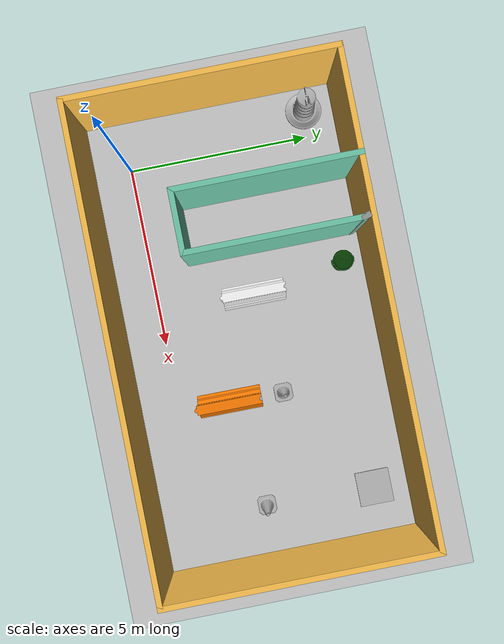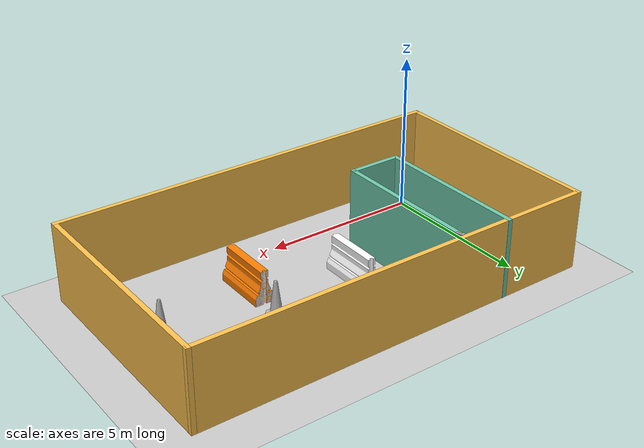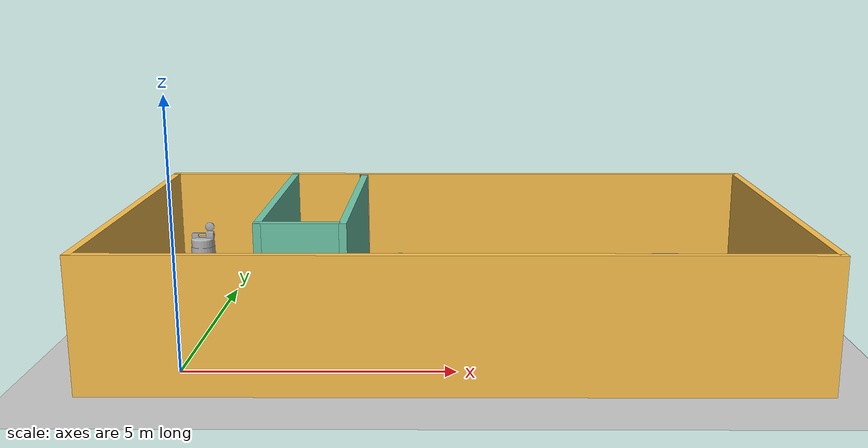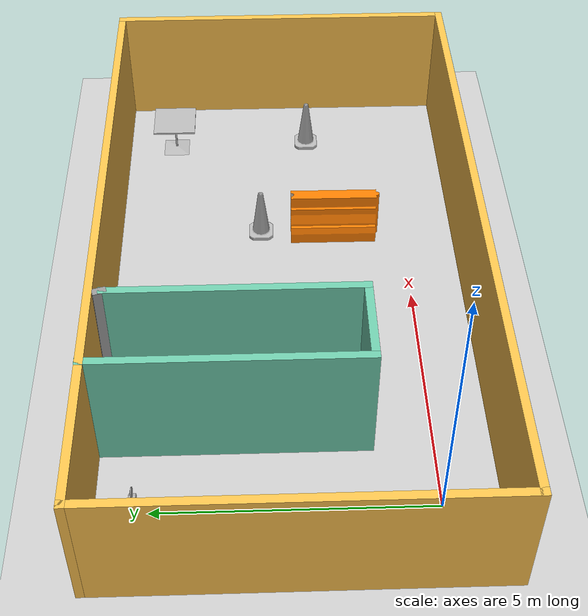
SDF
<sdf version="1.6">
 <world name="default">
  <light name="sun" type="directional">
   <pose>0 0 10 0 -0 0</pose>
   <diffuse>0.8 0.8 0.8 1</diffuse>
   <specular>0.2 0.2 0.2 1</specular>
   <attenuation>
    <range>1000</range>
    <constant>0.9</constant>
    <linear>0.01</linear>
    <quadratic>0.001</quadratic>
   </attenuation>
   <direction>-0.5 0.1 -0.9</direction>
  </light>
  <model name="ground_plane">
   <static>1</static>
   <link name="link">
    <collision name="collision">
     <geometry><plane><normal>0 0 1</normal><size>100 100</size></plane></geometry>
     <surface>
      <contact><collide_bitmask>65535</collide_bitmask></contact>
      <friction><ode><mu>100</mu><mu2>50</mu2></ode></friction>
     </surface>
    </collision>
    <visual name="visual">
     <cast_shadows>0</cast_shadows>
     <geometry><plane><normal>0 0 1</normal><size>100 100</size></plane></geometry>
     <material>
      <script><uri>file://media/materials/scripts/gazebo.material</uri><name>Gazebo/Grey</name></script>
     </material>
    </visual>
   </link>
  </model>
  <gravity>0 0 -9.8</gravity>
  <magnetic_field>6e-06 2.3e-05 -4.2e-05</magnetic_field>
  <atmosphere type="adiabatic"/>
  <physics name="default_physics" default="0" type="ode">
   <max_step_size>0.001</max_step_size>
   <real_time_factor>1</real_time_factor>
   <real_time_update_rate>1000</real_time_update_rate>
  </physics>
  <scene><ambient>0.4 0.4 0.4 1</ambient><background>0.7 0.7 0.7 1</background><shadows>1</shadows></scene>
  <spherical_coordinates>
   <surface_model>EARTH_WGS84</surface_model>
   <latitude_deg>0</latitude_deg>
   <longitude_deg>0</longitude_deg>
   <elevation>0</elevation>
   <heading_deg>0</heading_deg>
  </spherical_coordinates>
  <model name="TestRoom">
   <pose>4.96376 2.43874 0 0 -0 0</pose>
   <link name="Wall_0">
    <collision name="Wall_0_Collision">
     <geometry><box><size>7.25 0.15 2.5</size></box></geometry>
     <pose>0 0 1.25 0 -0 0</pose>
    </collision>
    <visual name="Wall_0_Visual">
     <pose>0 0 1.25 0 -0 0</pose>
     <geometry><box><size>7.25 0.15 2.5</size></box></geometry>
     <material>
      <script><uri>file://media/materials/scripts/gazebo.material</uri><name>Gazebo/Grey</name></script>
      <ambient>1 0.764706 0.305882 1</ambient>
     </material>
     <meta><layer>0</layer></meta>
    </visual>
    <pose>-6.425 -0.001985 0 0 0 -1.5708</pose>
   </link>
   <link name="Wall_1">
    <collision name="Wall_1_Collision">
     <geometry><box><size>13 0.15 2.5</size></box></geometry>
     <pose>0 0 1.25 0 -0 0</pose>
    </collision>
    <visual name="Wall_1_Visual">
     <pose>0 0 1.25 0 -0 0</pose>
     <geometry><box><size>13 0.15 2.5</size></box></geometry>
     <material>
      <script><uri>file://media/materials/scripts/gazebo.material</uri><name>Gazebo/Grey</name></script>
      <ambient>1 0.764706 0.305882 1</ambient>
     </material>
     <meta><layer>0</layer></meta>
    </visual>
    <pose>0 -3.55199 0 0 -0 0</pose>
   </link>
   <link name="Wall_2">
    <collision name="Wall_2_Collision">
     <geometry><box><size>7.25 0.15 2.5</size></box></geometry>
     <pose>0 0 1.25 0 -0 0</pose>
    </collision>
    <visual name="Wall_2_Visual">
     <pose>0 0 1.25 0 -0 0</pose>
     <geometry><box><size>7.25 0.15 2.5</size></box></geometry>
     <material>
      <script><uri>file://media/materials/scripts/gazebo.material</uri><name>Gazebo/Grey</name></script>
      <ambient>1 0.764706 0.305882 1</ambient>
     </material>
     <meta><layer>0</layer></meta>
    </visual>
    <pose>6.425 -0.001985 0 0 -0 1.5708</pose>
   </link>
   <link name="Wall_3">
    <collision name="Wall_3_Collision">
     <geometry><box><size>13 0.15 2.5</size></box></geometry>
     <pose>0 0 1.25 0 -0 0</pose>
    </collision>
    <visual name="Wall_3_Visual">
     <pose>0 0 1.25 0 -0 0</pose>
     <geometry><box><size>13 0.15 2.5</size></box></geometry>
     <material>
      <script><uri>file://media/materials/scripts/gazebo.material</uri><name>Gazebo/Grey</name></script>
      <ambient>1 0.764706 0.305882 1</ambient>
     </material>
     <meta><layer>0</layer></meta>
    </visual>
    <pose>0 3.54801 0 0 -0 3.14159</pose>
   </link>
   <link name="Wall_5">
    <collision name="Wall_5_Collision">
     <geometry><box><size>5 0.15 2.5</size></box></geometry>
     <pose>0 0 1.25 0 -0 0</pose>
    </collision>
    <visual name="Wall_5_Visual">
     <pose>0 0 1.25 0 -0 0</pose>
     <geometry><box><size>5 0.15 2.5</size></box></geometry>
     <material>
      <script><uri>file://media/materials/scripts/gazebo.material</uri><name>Gazebo/Grey</name></script>
      <ambient>0.435294 0.796078 0.67451 1</ambient>
     </material>
     <meta><layer>0</layer></meta>
    </visual>
    <pose>-3.6891 1.12698 0 0 0 -1.5708</pose>
   </link>
   <link name="Wall_7">
    <collision name="Wall_7_Collision">
     <geometry><box><size>1.75 0.15 2.5</size></box></geometry>
     <pose>0 0 1.25 0 -0 0</pose>
    </collision>
    <visual name="Wall_7_Visual">
     <pose>0 0 1.25 0 -0 0</pose>
     <geometry><box><size>1.75 0.15 2.5</size></box></geometry>
     <material>
      <script><uri>file://media/materials/scripts/gazebo.material</uri><name>Gazebo/Grey</name></script>
      <ambient>0.435294 0.796078 0.67451 1</ambient>
     </material>
     <meta><layer>0</layer></meta>
    </visual>
    <pose>-2.8891 -1.29801 0 0 -0 0</pose>
   </link>
   <link name="Wall_8">
    <collision name="Wall_8_Collision">
     <geometry><box><size>4.75 0.15 2.5</size></box></geometry>
     <pose>0 0 1.25 0 -0 0</pose>
    </collision>
    <visual name="Wall_8_Visual">
     <pose>0 0 1.25 0 -0 0</pose>
     <geometry><box><size>4.75 0.15 2.5</size></box></geometry>
     <material>
      <script><uri>file://media/materials/scripts/gazebo.material</uri><name>Gazebo/Grey</name></script>
      <ambient>0.435294 0.796078 0.67451 1</ambient>
     </material>
     <meta><layer>0</layer></meta>
    </visual>
    <pose>-2.08909 1.00198 0 0 -0 1.5708</pose>
   </link>
   <link name="Wall_9">
    <collision name="Wall_9_Collision">
     <geometry><box><size>0.25 0.15 2.5</size></box></geometry>
     <pose>0 0 1.25 0 -0 0</pose>
    </collision>
    <visual name="Wall_9_Visual">
     <pose>0 0 1.25 0 -0 0</pose>
     <geometry><box><size>0.25 0.15 2.5</size></box></geometry>
     <material>
      <script><uri>file://media/materials/scripts/gazebo.material</uri><name>Gazebo/Grey</name></script>
      <ambient>1 1 1 1</ambient>
     </material>
     <meta><layer>0</layer></meta>
    </visual>
    <pose>-2.10204 3.35028 0 0 -0 1.8326</pose>
   </link>
   <static>1</static>
  </model>
  <model name="cafe_table_0">
   <static>1</static>
   <link name="link">
    <collision name="surface">
     <pose>0 0 0.755 0 -0 0</pose>
     <geometry><box><size>0.913 0.913 0.04</size></box></geometry>
    </collision>
    <collision name="column">
     <pose>0 0 0.37 0 -0 0</pose>
     <geometry><box><size>0.042 0.042 0.74</size></box></geometry>
    </collision>
    <collision name="base">
     <pose>0 0 0.02 0 -0 0</pose>
     <geometry><box><size>0.56 0.56 0.04</size></box></geometry>
    </collision>
    <visual name="visual">
     <geometry><mesh><uri>model://cafe_table/meshes/cafe_table.dae</uri></mesh></geometry>
    </visual>
   </link>
   <pose>9.89664 4.87559 0 0 -0 0</pose>
  </model>
  <model name="Construction Cone_0">
   <link name="link">
    <collision name="collision">
     <geometry>
      <mesh><scale>10 10 10</scale><uri>model://construction_cone/meshes/construction_cone.dae</uri></mesh>
     </geometry>
    </collision>
    <visual name="visual">
     <geometry>
      <mesh><scale>10 10 10</scale><uri>model://construction_cone/meshes/construction_cone.dae</uri></mesh>
     </geometry>
    </visual>
    <inertial>
     <inertia><ixx>1</ixx><ixy>0</ixy><ixz>0</ixz><iyy>1</iyy><iyz>0</iyz><izz>1</izz></inertia>
     <mass>1</mass>
    </inertial>
   </link>
   <pose>9.97612 1.9176 0 0 -0 0</pose>
  </model>
  <model name="Construction Cone_1">
   <link name="link">
    <collision name="collision">
     <geometry>
      <mesh><scale>10 10 10</scale><uri>model://construction_cone/meshes/construction_cone.dae</uri></mesh>
     </geometry>
    </collision>
    <visual name="visual">
     <geometry>
      <mesh><scale>10 10 10</scale><uri>model://construction_cone/meshes/construction_cone.dae</uri></mesh>
     </geometry>
    </visual>
    <inertial>
     <inertia><ixx>1</ixx><ixy>0</ixy><ixz>0</ixz><iyy>1</iyy><iyz>0</iyz><izz>1</izz></inertia>
     <mass>1</mass>
    </inertial>
   </link>
   <pose>6.95995 2.98151 0 0 -0 0</pose>
  </model>
  <model name="Construction Barrel">
   <link name="link">
    <inertial>
     <pose>0 0 0.4 0 -0 0</pose>
     <mass>500</mass>
     <inertia><ixx>51.2096</ixx><iyy>51.2096</iyy><izz>25</izz><ixy>0</ixy><ixz>0</ixz><iyz>0</iyz></inertia>
    </inertial>
    <collision name="collision">
     <geometry><mesh><uri>model://construction_barrel/meshes/construction_barrel.dae</uri></mesh></geometry>
    </collision>
    <visual name="visual">
     <geometry><mesh><uri>model://construction_barrel/meshes/construction_barrel.dae</uri></mesh></geometry>
    </visual>
   </link>
   <pose>-0.743414 5.10286 0 0 0 -1.7e-05</pose>
  </model>
  <model name="drc_practice_white_jersey_barrier">
   <static>1</static>
   <link name="link">
    <visual name="visual">
     <geometry>
      <mesh><uri>model://drc_practice_white_jersey_barrier/meshes/jersey_barrier.dae</uri></mesh>
     </geometry>
    </visual>
    <collision name="collision">
     <geometry>
      <mesh><uri>model://drc_practice_white_jersey_barrier/meshes/jersey_barrier.dae</uri></mesh>
     </geometry>
    </collision>
   </link>
   <pose>4.08943 2.70642 0 0 -0 0</pose>
  </model>
  <model name="drc_practice_organge_jersey_barrier">
   <static>1</static>
   <link name="link">
    <visual name="visual">
     <geometry>
      <mesh><uri>model://drc_practice_orange_jersey_barrier/meshes/jersey_barrier.dae</uri></mesh>
     </geometry>
    </visual>
    <collision name="collision">
     <geometry>
      <mesh><uri>model://drc_practice_orange_jersey_barrier/meshes/jersey_barrier.dae</uri></mesh>
     </geometry>
    </collision>
   </link>
   <pose>6.91228 1.47302 0 0 -0 0</pose>
  </model>
  <model name="first_2015_trash_can">
   <link name="link">
    <inertial>
     <pose>0 0 0.3683 0 -0 0</pose>
     <mass>4.83076</mass>
     <inertia>
      <ixx>0.281534</ixx>
      <ixy>0</ixy>
      <ixz>0</ixz>
      <iyy>0.281534</iyy>
      <iyz>0</iyz>
      <izz>0.126223</izz>
     </inertia>
    </inertial>
    <visual name="visual">
     <geometry><mesh><uri>model://first_2015_trash_can/meshes/trash_can.dae</uri></mesh></geometry>
    </visual>
    <collision name="collision">
     <geometry><mesh><uri>model://first_2015_trash_can/meshes/trash_can.dae</uri></mesh></geometry>
    </collision>
   </link>
   <pose>3.69144 5.27932 -2e-06 1.2e-05 6e-06 -0.000133</pose>
  </model>
 </world>
</sdf>
